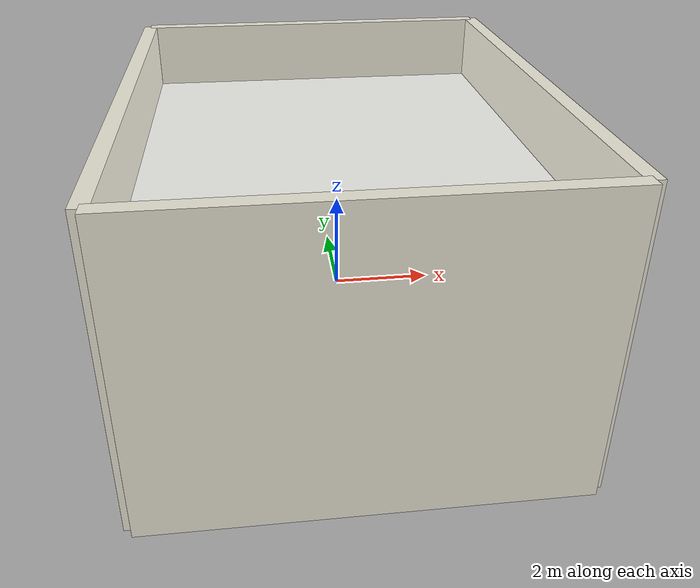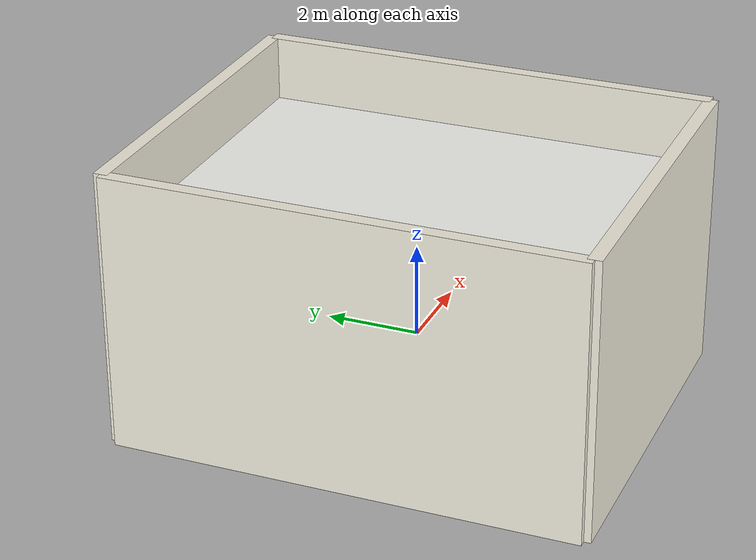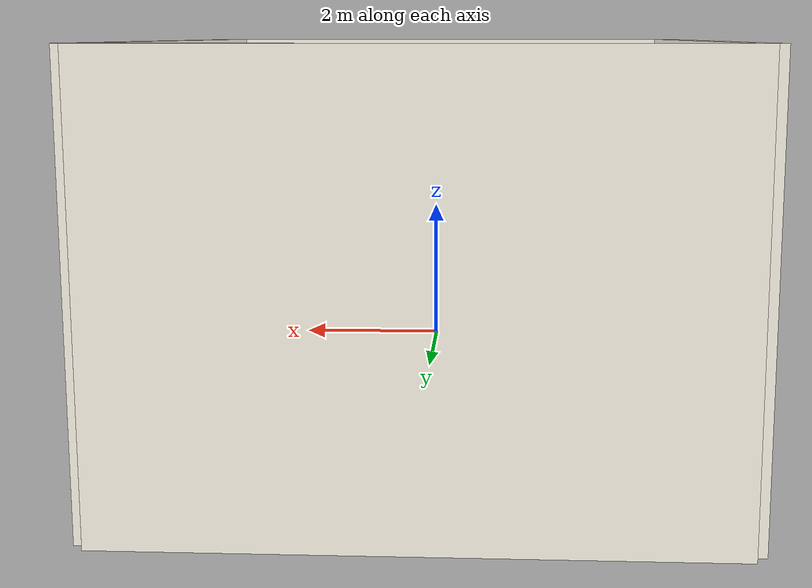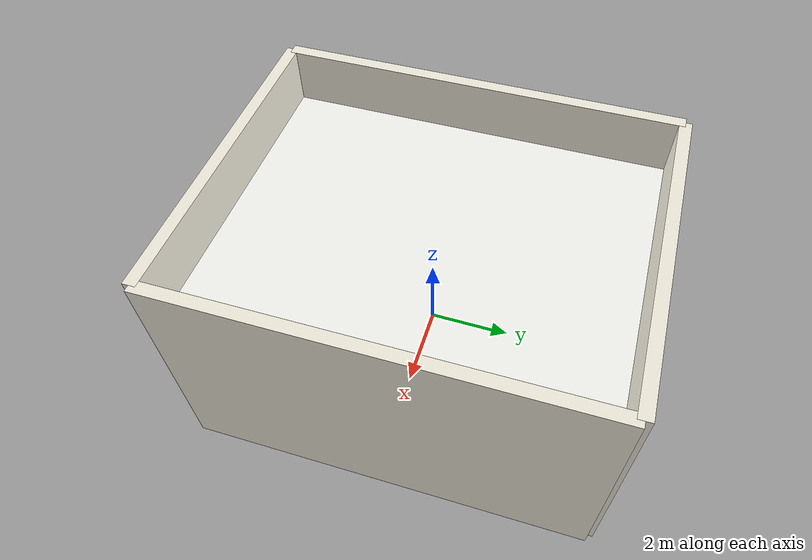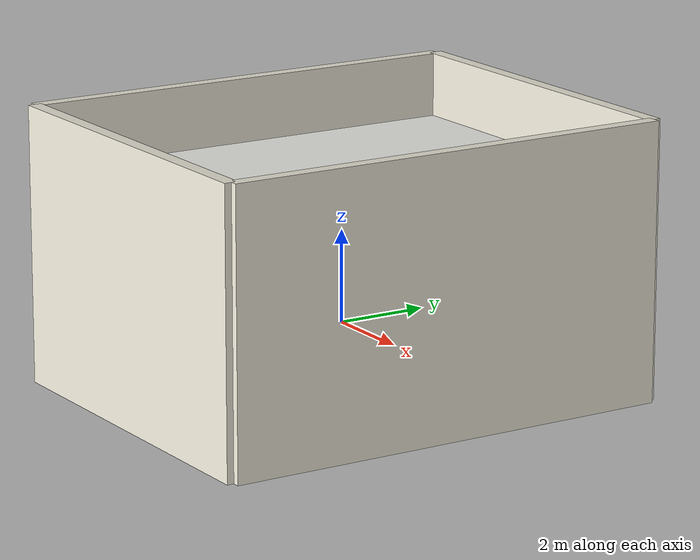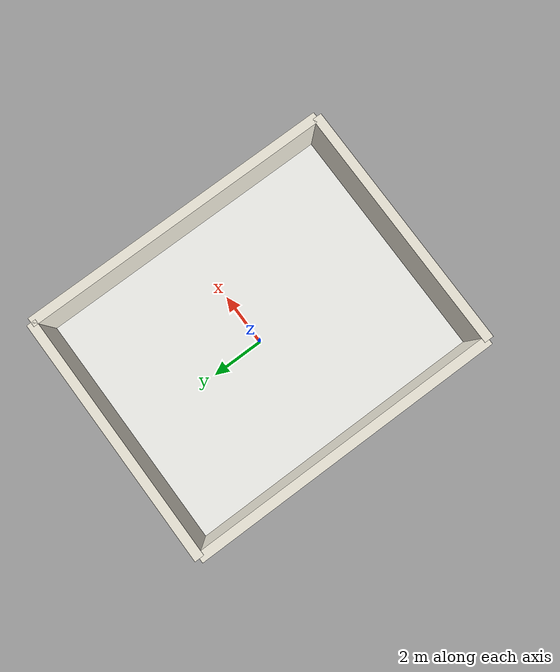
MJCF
<mujoco model="room">
<!-- Room assets and geometry -->
  <asset>
    <!-- Luxury marble floor -->
    <texture name="marble_floor" type="2d" builtin="gradient"
             rgb1="0.95 0.95 0.92" rgb2="0.88 0.88 0.85"
             width="512" height="512"/>

    <!-- Cream painted walls -->
    <texture name="cream_walls" type="2d" builtin="flat"
             rgb1="0.96 0.94 0.88" rgb2="0.94 0.92 0.86"
             width="1024" height="1024"/>

    <!-- Stainless steel accents -->
    <texture name="steel" type="2d" builtin="gradient"
             rgb1="0.8 0.82 0.85" rgb2="0.75 0.77 0.8"
             width="256" height="256"/>

    <!-- Materials -->
    <material name="marble" texture="marble_floor"
              texrepeat="8 8"
              specular="0.9"
              shininess="0.8"
              reflectance="0.4"/>

    <material name="cream_paint" texture="cream_walls"
              texrepeat="2 2"
              specular="0.2"
              shininess="0.1"
              reflectance="0.05"/>

    <material name="stainless" texture="steel"
              texrepeat="4 4"
              specular="0.95"
              shininess="0.9"
              reflectance="0.7"/>
  </asset>

  <worldbody>
    <!-- Marble floor -->
    <geom name="floor" type="plane"
          size="4 5 0.1"
          material="marble"
          friction="0.8 0.02 0.01"/>

    <!-- Cream walls -->
    <geom name="wall_north" type="box"
          size="4 0.15 3"
          pos="0 5 1.5"
          material="cream_paint"/>
    <geom name="wall_south" type="box"
          size="4 0.15 3"
          pos="0 -5 1.5"
          material="cream_paint"/>
    <geom name="wall_east" type="box"
          size="0.15 5 3"
          pos="4 0 1.5"
          material="cream_paint"/>
    <geom name="wall_west" type="box"
          size="0.15 5 3"
          pos="-4 0 1.5"
          material="cream_paint"/>

    <!-- Window -->
    <geom name="window_frame" type="box"
          size="1.5 0.1 1.2"
          pos="0 -4.95 1.8"
          material="stainless"/>
    <geom name="window_glass" type="box"
          size="1.4 0.05 1.1"
          pos="0 -4.9 1.8"
          rgba="0.8 0.9 1.0 0.3"/>

    <!-- Ceiling -->
    <geom name="ceiling" type="box"
          size="4 5 0.1"
          pos="0 0 3"
          rgba="0.98 0.98 0.96 1"/>
  </worldbody>
</mujoco>
